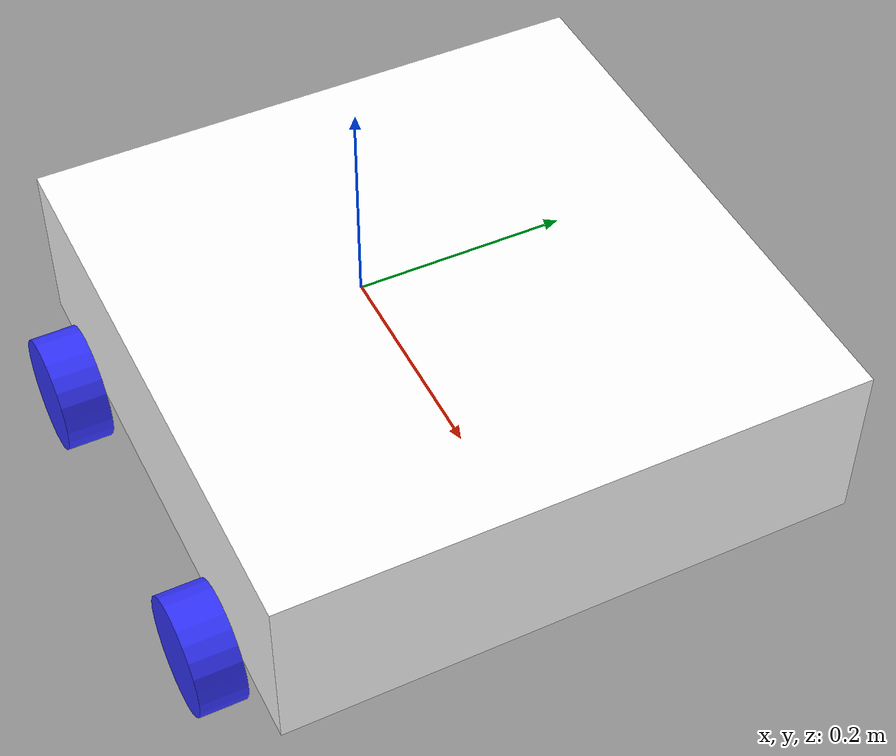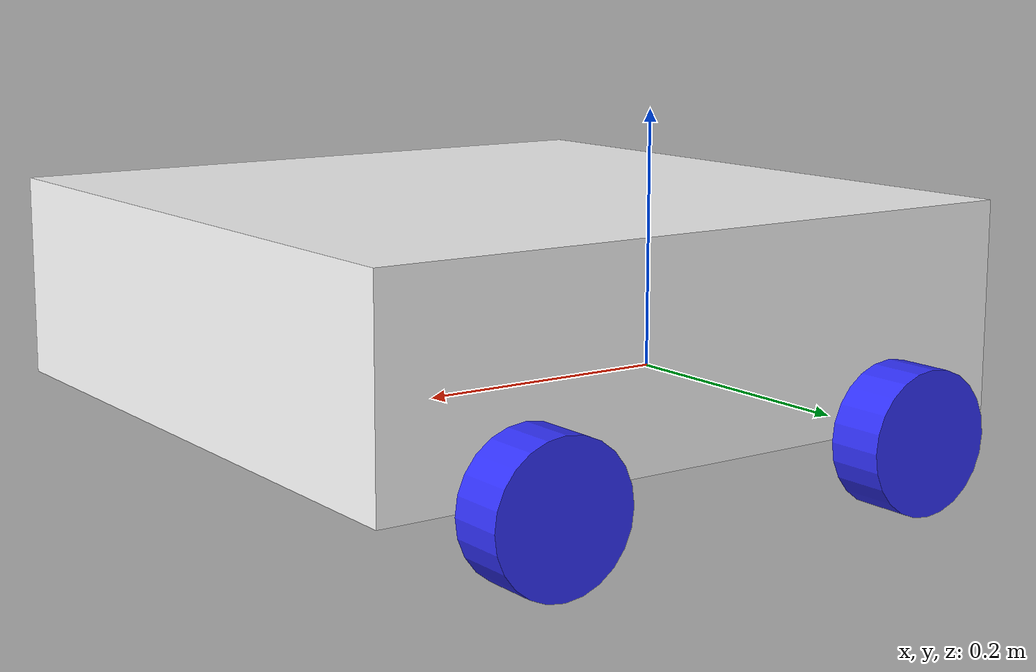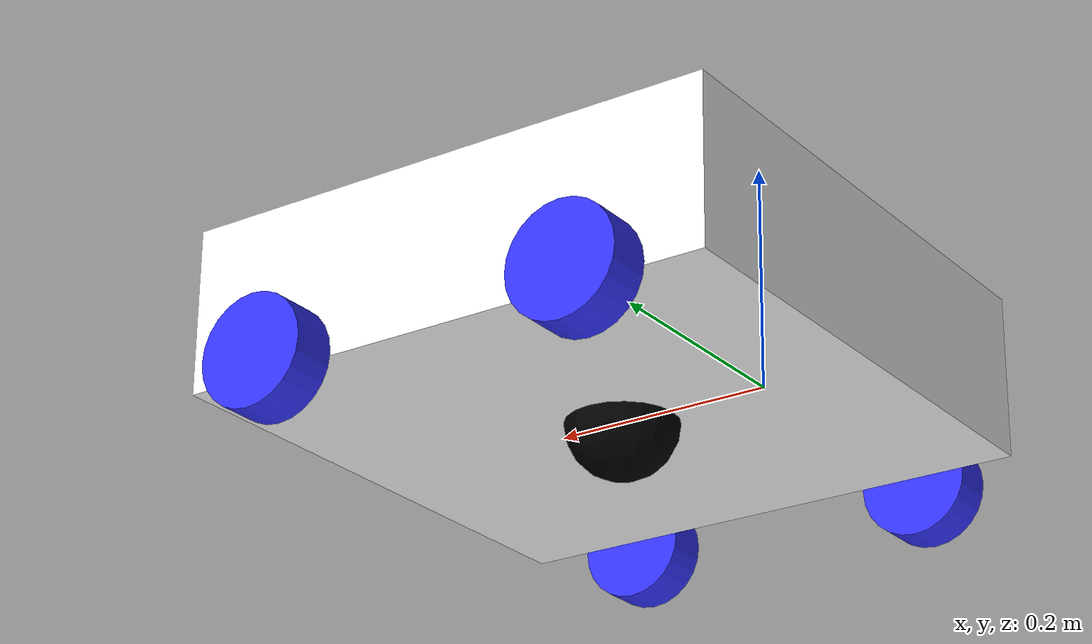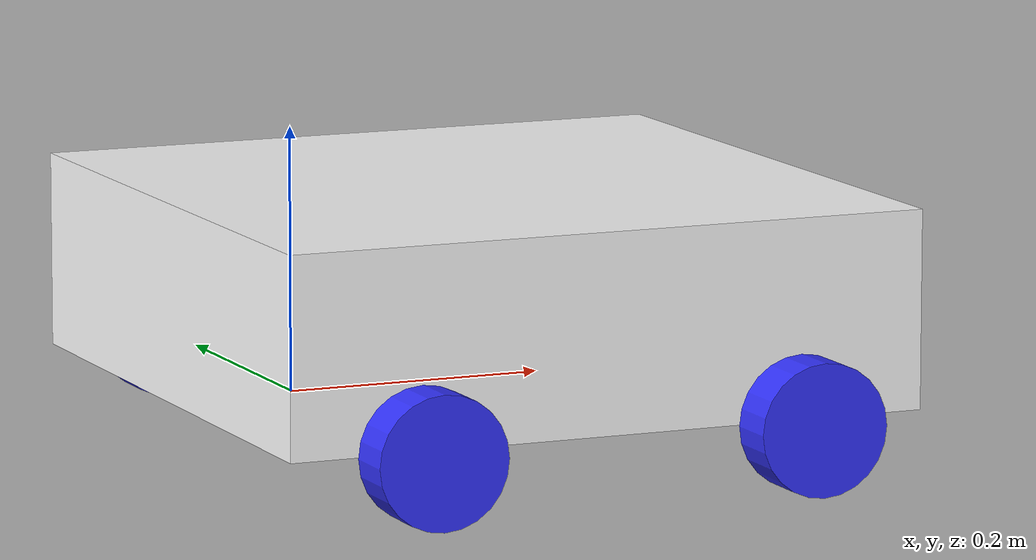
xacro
<?xml version="1.0"?>
<robot xmlns:xacro="http://www.ros.org/wiki/xacro" >

    <xacro:include filename="inertial_macros.xacro"/>

    <material name="white">
        <color rgba="1 1 1 1" />
    </material>

    <material name="orange">
        <color rgba="1 0.3 0.1 1"/>
    </material>

    <material name="blue">
        <color rgba="0.2 0.2 1 1"/>
    </material>

    <material name="black">
        <color rgba="0 0 0 1"/>
    </material>

    <!-- BASE LINK -->

    <link name="base_link">

    </link>

    <!-- CHASSIS LINK -->

    <joint name="chassis_joint" type="fixed">
        <parent link="base_link"/>
        <child link="chassis"/>
        <origin xyz="-0.1 0 0"/>
    </joint>

    <link name="chassis">
        <visual>
            <origin xyz="0.25 0 0.075"/>
            <geometry>
                <box size="0.5 0.5 0.15"/>
            </geometry>
            <material name="white"/>
        </visual>
        <collision>
            <origin xyz="0.25 0 0.075"/>
            <geometry>
                <box size="0.5 0.5 0.15"/>
            </geometry>
        </collision>
        <xacro:inertial_box mass="0.6" x="0.5" y="0.5" z="0.15">
            <origin xyz="0.25 0 0.075" rpy="0 0 0"/>
        </xacro:inertial_box>
    </link>

    <!-- LEFT WHEEL LINK -->

    <joint name="left_wheel_joint" type="continuous">
        <parent link="base_link"/>
        <child link="left_wheel"/>
        <origin xyz="0 0.275 0" rpy="-${pi/2} 0 0" />
        <axis xyz="0 0 1"/>
    </joint>

    <link name="left_wheel">
        <visual>
            <geometry>
                <cylinder radius="0.05" length="0.04"/>
            </geometry>
            <material name="blue"/>
        </visual>
        <collision>
            <geometry>
                <cylinder radius="0.05" length="0.04"/>
            </geometry>
        </collision>
        <xacro:inertial_cylinder mass="0.1" length="0.04" radius="0.05">
            <origin xyz="0 0 0" rpy="0 0 0"/>
        </xacro:inertial_cylinder>
    </link>

    <joint name="second_left_wheel_joint" type="continuous">
        <parent link="base_link"/>
        <child link= "second_left_wheel"/>
        <origin xyz="0.3 0.275 0" rpy="-${pi/2} 0 0" />
        <axis xyz="0 0 1"/>
    </joint>

    <link name="second_left_wheel">
        <visual>
            <geometry>
                <cylinder radius="0.05" length="0.04"/>
            </geometry>
            <material name="blue"/>
        </visual>
        <collision>
            <geometry>
                <cylinder radius="0.05" length="0.04"/>
            </geometry>
        </collision>
        <xacro:inertial_cylinder mass="0.1" length="0.04" radius="0.05">
            <origin xyz="0 0 0" rpy="0 0 0"/>
        </xacro:inertial_cylinder>
    </link>

    <!-- RIGHT WHEEL LINK -->

    <joint name="right_wheel_joint" type="continuous">
        <parent link="base_link"/>
        <child link="right_wheel"/>
        <origin xyz="0 -0.275 0" rpy="${pi/2} 0 0" />
        <axis xyz="0 0 -1"/>
    </joint>

    <link name="right_wheel">
        <visual>
            <geometry>
                <cylinder radius="0.05" length="0.04"/>
            </geometry>
            <material name="blue"/>
        </visual>
        <collision>
            <geometry>
                <cylinder radius="0.05" length="0.04"/>
            </geometry>
        </collision>
        <xacro:inertial_cylinder mass="0.1" length="0.04" radius="0.05">
            <origin xyz="0 0 0" rpy="0 0 0"/>
        </xacro:inertial_cylinder>
    </link>

<joint name="second_right_wheel_joint" type="continuous">
        <parent link="base_link"/>
        <child link= "second_right_wheel"/>
        <origin xyz="0.3 -0.275 0" rpy="-${pi/2} 0 0" />
        <axis xyz="0 0 1"/>
    </joint>

    <link name="second_right_wheel">
        <visual>
            <geometry>
                <cylinder radius="0.05" length="0.04"/>
            </geometry>
            <material name="blue"/>
        </visual>
        <collision>
            <geometry>
                <cylinder radius="0.05" length="0.04"/>
            </geometry>
        </collision>
        <xacro:inertial_cylinder mass="0.1" length="0.04" radius="0.05">
            <origin xyz="0 0 0" rpy="0 0 0"/>
        </xacro:inertial_cylinder>
    </link>

    <!-- CASTER WHEEL LINK -->

    <joint name="caster_wheel_joint" type="fixed">
        <parent link="chassis"/>
        <child link="caster_wheel"/>
        <origin xyz="0.24 0 0"/>
    </joint>

    <link name="caster_wheel">
        <visual>
            <geometry>
                <sphere radius="0.05"/>
            </geometry>
            <material name="black"/>
        </visual>
        <collision>
            <geometry>
                <sphere radius="0.05"/>
            </geometry>
        </collision>
        <xacro:inertial_sphere mass="0.1" radius="0.05">
            <origin xyz="0 0 0" rpy="0 0 0"/>
        </xacro:inertial_sphere>
    </link>

</robot>
